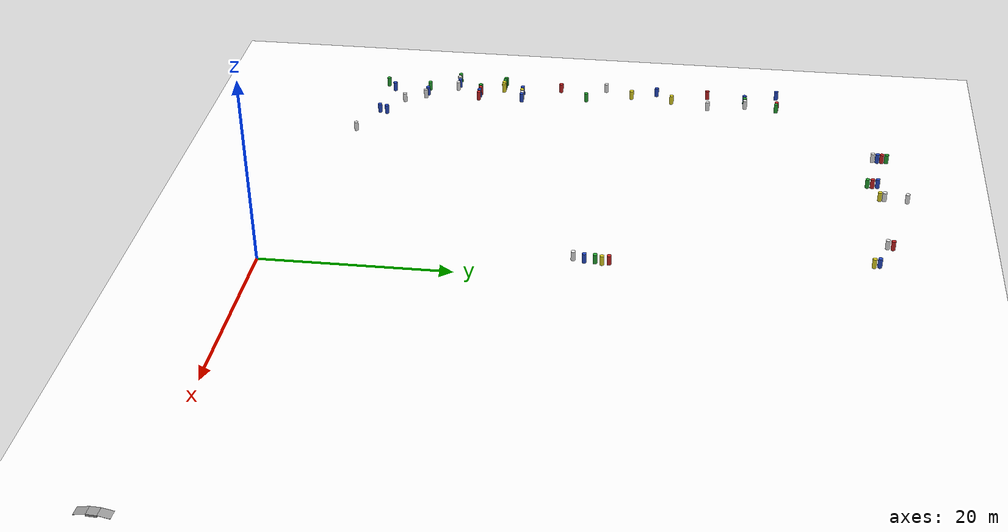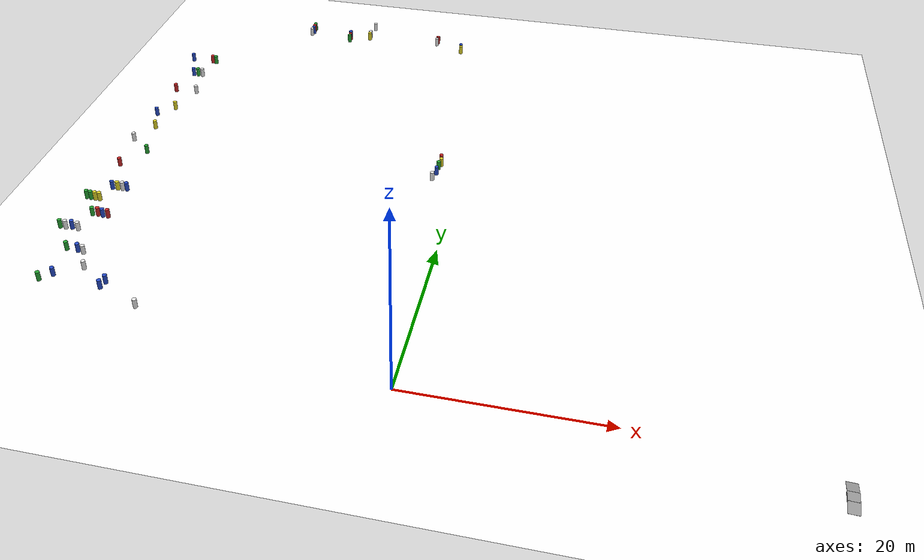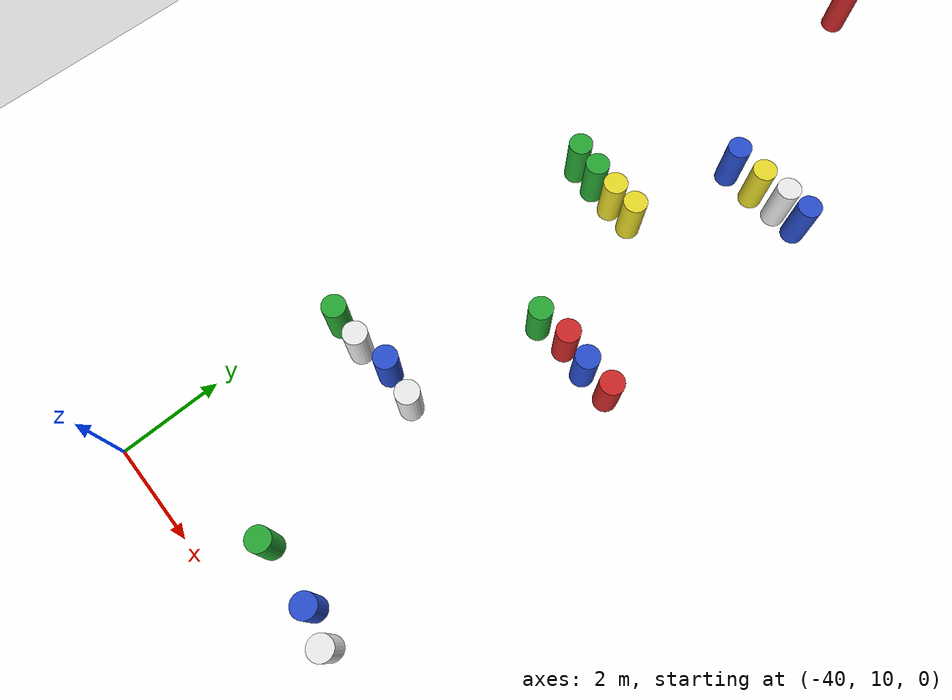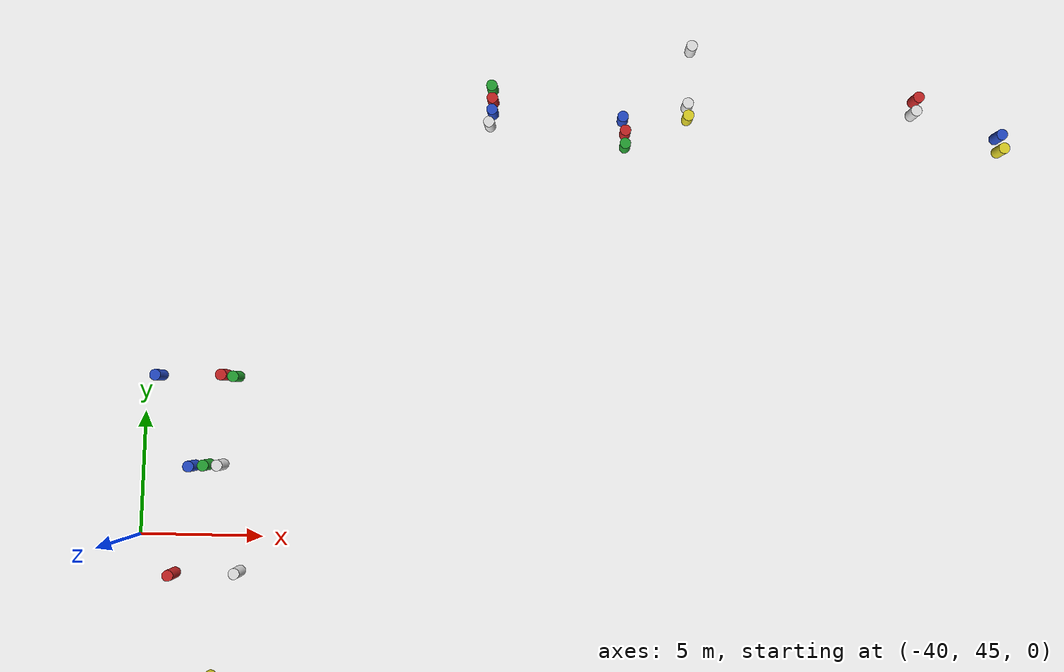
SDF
<sdf version="1.10">
 <world name="IGVC_AutoNav">
  <plugin name="gz::sim::systems::Physics" filename="gz-sim-physics-system"/>
  <plugin name="gz::sim::systems::UserCommands" filename="gz-sim-user-commands-system"/>
  <plugin name="gz::sim::systems::SceneBroadcaster" filename="gz-sim-scene-broadcaster-system"/>
  <plugin name="gz::sim::systems::Contact" filename="gz-sim-contact-system"/>
  <plugin name="gz::sim::systems::NavSat" filename="gz-sim-navsat-system"/>
  <spherical_coordinates>
   <surface_model>EARTH_WGS84</surface_model>
   <world_frame_orientation>ENU</world_frame_orientation>
   <latitude_deg>47.478949999999998</latitude_deg>
   <longitude_deg>19.057784999999999</longitude_deg>
   <elevation>0</elevation>
   <heading_deg>0</heading_deg>
  </spherical_coordinates>
  <plugin name="gz::sim::systems::Sensors" filename="gz-sim-sensors-system">
   <render_engine>ogre2</render_engine>
  </plugin>
  <plugin name="gz::sim::systems::Imu" filename="gz-sim-imu-system"/>
  <gravity>0 0 -9.8000000000000007</gravity>
  <magnetic_field>6.0000000000000002e-06 2.3e-05 -4.1999999999999998e-05</magnetic_field>
  <atmosphere type="adiabatic"/>
  <physics type="ode">
   <max_step_size>0.0050000000000000001</max_step_size>
   <real_time_factor>1</real_time_factor>
   <real_time_update_rate>200</real_time_update_rate>
  </physics>
  <scene>
   <ambient>0.400000006 0.400000006 0.400000006 1</ambient>
   <background>0.699999988 0.699999988 0.699999988 1</background>
   <shadows>true</shadows>
  </scene>
  <include><uri>model://autonav_ground_plane</uri><name>ground_plane</name></include>
  <include>
   <uri>model://ramp</uri>
   <name>ramp</name>
   <pose>22.289173126229461 -1.7593828439352679 0.12093662914603238 -0.00040758482251891984 1.8813558769869026e-05 -0.00027779097985906144</pose>
  </include>
  <include>
   <uri>model://barrel_green</uri>
   <name>barrel_green</name>
   <pose>7.9045200347900391 -0.6910560131072998 0.51783412973959364 5.4465320442575335e-17 1.4847199703921773e-16 1.1335182259741231e-17</pose>
  </include>
  <include>
   <uri>model://barrel_red</uri>
   <name>barrel_red</name>
   <pose>7.9519891705803625 0.71237891741602632 0.51783500226090018 -3.9895035379754155e-08 1.3163939249185187e-06 -3.5364144559898175e-10</pose>
  </include>
  <include>
   <uri>model://barrel_blue</uri>
   <name>barrel_blue</name>
   <pose>7.883906364440918 -1.7733099460601807 0.51783484711055439 5.6646733285059868e-17 -1.274651809434059e-17 3.2759096209912879e-18</pose>
  </include>
  <include>
   <uri>model://barrel_white</uri>
   <name>barrel_white</name>
   <pose>7.6080474853515625 -2.9339299201965332 0.51783401723409928 -1.0880296480481386e-16 -6.0992637707180622e-17 -1.1018668432930874e-17</pose>
  </include>
  <include>
   <uri>model://barrel_yellow</uri>
   <name>barrel_yellow</name>
   <pose>8.0864911843893648 5.8954190899095729e-08 0.51783499815625755 -3.9881195985147071e-10 8.7103696880660815e-07 -2.037228703888771e-08</pose>
  </include>
  <include>
   <uri>model://barrel_green</uri>
   <name>barrel_green_1_1</name>
   <pose>-15.488190812153249 28.98845227458223 0.51783484828566551 2.6413974714889565e-17 1.6931036770831109e-16 4.3765581081979616e-18</pose>
  </include>
  <include>
   <uri>model://barrel_red</uri>
   <name>barrel_red_1</name>
   <pose>-15.453693650233234 28.475813930075642 0.51783484828566551 3.4192321481962751e-17 -6.6721553197645418e-17 -9.242358905622676e-18</pose>
  </include>
  <include>
   <uri>model://barrel_blue</uri>
   <name>barrel_blue_1</name>
   <pose>-15.454241538800543 28.002397955323904 0.51783484828566551 8.4153565895768564e-17 1.6823267572497156e-18 -1.1071003553101453e-18</pose>
  </include>
  <include>
   <uri>model://barrel_white</uri>
   <name>barrel_white_1</name>
   <pose>-15.570004476142145 27.491930829973384 0.51783484828566551 -8.9882920964459109e-17 -1.1494581093160616e-16 -1.0142163574368175e-17</pose>
  </include>
  <include>
   <uri>model://barrel_green</uri>
   <name>barrel_green_2</name>
   <pose>-10.008976388729545 26.727866245258202 0.51783484828566551 5.0031068638151044e-17 1.8764124539171192e-16 -1.5190534901501726e-18</pose>
  </include>
  <include>
   <uri>model://barrel_red</uri>
   <name>barrel_red_2</name>
   <pose>-10.014990794950684 27.262920619148893 0.51783484828566551 -7.3727530299513395e-18 -1.3139233913193364e-16 -4.7712782277717012e-18</pose>
  </include>
  <include>
   <uri>model://barrel_blue</uri>
   <name>barrel_blue_2</name>
   <pose>-10.127975236161745 27.821636974121034 0.51783484828566551 8.142363533649928e-17 -2.676848542158592e-17 2.6029860731572573e-18</pose>
  </include>
  <include>
   <uri>model://barrel_white</uri>
   <name>barrel_white_2</name>
   <pose>-7.37641995222081 30.80256806565734 0.51783484828566551 -1.0882791985761164e-16 -4.4702081130767761e-18 -9.6641107963062212e-18</pose>
  </include>
  <include>
   <uri>model://barrel_yellow</uri>
   <name>barrel_yellow_1</name>
   <pose>-7.4669771570731376 27.931695500593694 0.51783484828566551 -2.8839565225299995e-17 -9.9271375607526221e-17 -5.0419286304493866e-18</pose>
  </include>
  <include>
   <uri>model://barrel_white</uri>
   <name>barrel_white_3</name>
   <pose>-7.4919378585986252 28.429467202487775 0.51783484828566551 -1.1863472879319026e-16 -6.5724550227156299e-17 -9.8911289060128324e-18</pose>
  </include>
  <include>
   <uri>model://barrel_red</uri>
   <name>barrel_red_3</name>
   <pose>1.8812475376618067 28.881296809577414 0.51783484828566551 -7.3677899399744839e-20 -8.0407445216781689e-17 -1.0066938199059185e-17</pose>
  </include>
  <include>
   <uri>model://barrel_white</uri>
   <name>barrel_white_4</name>
   <pose>1.789702633557372 28.324716629763884 0.51783484828566551 -1.328325375699971e-16 -8.1416517101511263e-17 -1.1764413924336685e-17</pose>
  </include>
  <include>
   <uri>model://barrel_yellow</uri>
   <name>barrel_yellow_2</name>
   <pose>5.3592741032332363 26.861703425308278 0.51783484828566551 8.4315334483502813e-18 -8.0667063018846105e-17 -7.7463089969692476e-18</pose>
  </include>
  <include>
   <uri>model://barrel_blue</uri>
   <name>barrel_blue_3</name>
   <pose>5.2657296668635674 27.416795858760544 0.51783484828566551 4.8867705697542638e-17 -2.5146612452443584e-18 2.7084613670198057e-18</pose>
  </include>
  <include>
   <uri>model://barrel_green</uri>
   <name>barrel_green_3</name>
   <pose>-25.556525668305117 16.940541040125776 0.51783484828566551 3.772194755566899e-17 1.1293878341134605e-16 2.7685612896972377e-18</pose>
  </include>
  <include>
   <uri>model://barrel_red</uri>
   <name>barrel_red_4</name>
   <pose>-26.04345920466524 17.000907147320287 0.51783484828566551 3.3458913210818703e-17 -3.9731026094263697e-17 -7.8879549044274355e-18</pose>
  </include>
  <include>
   <uri>model://barrel_blue</uri>
   <name>barrel_blue_4</name>
   <pose>-28.67925873807792 16.934691875648735 0.51783484828566551 8.0684160413954195e-17 -2.1424394027182248e-19 4.0088506845633501e-18</pose>
  </include>
  <include>
   <uri>model://barrel_white</uri>
   <name>barrel_white_5</name>
   <pose>-26.067814814563913 13.369549408150338 0.51783484828566551 -1.2782705024634471e-16 -7.4746497214979288e-17 -9.0084261575558762e-18</pose>
  </include>
  <include>
   <uri>model://barrel_green</uri>
   <name>barrel_green_4</name>
   <pose>-26.625692237642816 13.357648602477834 0.51783484828566551 5.7691938650509445e-17 7.6558506547920066e-17 1.4718234492409017e-18</pose>
  </include>
  <include>
   <uri>model://barrel_blue</uri>
   <name>barrel_blue_5</name>
   <pose>-27.20851498275951 13.30408536823926 0.51783484828566551 2.4531569160843424e-17 -1.4294515637503489e-17 -6.714172027910698e-19</pose>
  </include>
  <include>
   <uri>model://barrel_white</uri>
   <name>barrel_white_6</name>
   <pose>-25.224193547631685 9.1042400493614402 0.51783484828566551 -7.7766467135084704e-17 -8.469901718141504e-17 -1.0581058952210694e-17</pose>
  </include>
  <include>
   <uri>model://barrel_red</uri>
   <name>barrel_red_5</name>
   <pose>-27.855475827336114 8.9738529878827897 0.51783484828566551 5.3275513043597715e-17 -7.4363174120487227e-17 -7.4146954109797225e-18</pose>
  </include>
  <include>
   <uri>model://barrel_yellow</uri>
   <name>barrel_yellow_3</name>
   <pose>-26.254278002759925 4.9040162812890564 0.51783484828566551 1.6280774601454003e-17 -8.039673446585886e-17 -6.3108930923532993e-18</pose>
  </include>
  <include>
   <uri>model://barrel_blue</uri>
   <name>barrel_blue_6</name>
   <pose>-27.882420676622051 3.0897250588429195 0.51783484828566551 8.0414354658290282e-17 -1.814163817801844e-17 7.1043412813874378e-19</pose>
  </include>
  <include>
   <uri>model://barrel_yellow</uri>
   <name>barrel_yellow_4</name>
   <pose>-26.87131102976743 0.23700118711770202 0.51783484828566551 3.3853087318781557e-17 -3.4726550222486197e-18 -6.5935192506070422e-18</pose>
  </include>
  <include>
   <uri>model://barrel_white</uri>
   <name>barrel_white_7</name>
   <pose>-28.221606580919477 -2.8232942043228917 0.51783484828566551 -8.0297798726122618e-17 -3.0258274683428356e-17 -9.9843566439057361e-18</pose>
  </include>
  <include>
   <uri>model://barrel_green</uri>
   <name>barrel_green_5</name>
   <pose>-25.647826172053435 -4.9643647365991086 0.51783484828566551 8.6622064681696006e-17 1.4940789662818441e-16 3.9325478953923625e-18</pose>
  </include>
  <include>
   <uri>model://barrel_red</uri>
   <name>barrel_red_6</name>
   <pose>-27.56315194540203 -8.0715611466327886 0.51783484828566551 -1.1859328054006835e-17 -1.326962380440271e-16 -7.6294863200789303e-18</pose>
  </include>
  <include>
   <uri>model://barrel_blue</uri>
   <name>barrel_blue_8_1</name>
   <pose>-25.172713769974248 -17.413864249884529 0.51783484828566551 8.0474891953050402e-17 -2.6763468477948196e-17 1.1733794409209652e-18</pose>
  </include>
  <include>
   <uri>model://barrel_red</uri>
   <name>barrel_red_6_1</name>
   <pose>-24.571154852252711 -17.405801527208045 0.51783484828566551 -1.968006045172916e-17 -1.1090358328917572e-16 -7.0181249282642739e-18</pose>
  </include>
  <include>
   <uri>model://barrel_red</uri>
   <name>barrel_red_6_1_1</name>
   <pose>-25.732425505239149 -17.346344393532547 0.5178341887594714 -3.6343005684833846e-17 -8.8432740560082973e-17 -7.9205803277673888e-18</pose>
  </include>
  <include>
   <uri>model://barrel_green</uri>
   <name>barrel_green_6_1</name>
   <pose>-28.678495720373331 -20.160042973346741 0.51783401723409739 5.4535115625600877e-17 1.4830777115285774e-16 1.1360234715536376e-17</pose>
  </include>
  <include>
   <uri>model://barrel_white</uri>
   <name>barrel_white_8_1</name>
   <pose>-28.048248473432256 -20.178473913610141 0.51783401723409739 -1.0877418664355473e-16 -6.0999144363471906e-17 -1.1029129765921806e-17</pose>
  </include>
  <include>
   <uri>model://barrel_blue</uri>
   <name>barrel_blue_9_1</name>
   <pose>-27.367939370193024 -20.043155904352503 0.51783484828566551 5.3357552092124544e-17 2.6774367614380947e-17 1.048527673547855e-18</pose>
  </include>
  <include>
   <uri>model://barrel_white</uri>
   <name>barrel_white_8_2</name>
   <pose>-26.646565180749235 -20.139862415168395 0.51783401723409739 -1.088296711086501e-16 -6.0961024365455408e-17 -1.1035027337856759e-17</pose>
  </include>
  <include>
   <uri>model://barrel_green</uri>
   <name>barrel_green_6_2</name>
   <pose>-26.348015083102208 -17.43436936375965 0.51783401723409739 5.4399204825411291e-17 1.4831997394180536e-16 1.137718516544725e-17</pose>
  </include>
  <include>
   <uri>model://barrel_blue</uri>
   <name>barrel_blue_8_2</name>
   <pose>-24.710234136220055 -12.398350802537937 0.51783500180521858 8.7258415564281948e-07 -4.7395525895452984e-08 -9.7468388716746216e-06</pose>
  </include>
  <include>
   <uri>model://barrel_white</uri>
   <name>barrel_white_8_3</name>
   <pose>-25.206345455748391 -12.412243441990343 0.51783499772072439 1.2580671568312728e-06 -4.7696693970045557e-07 4.430946596557043e-06</pose>
  </include>
  <include>
   <uri>model://barrel_yellow</uri>
   <name>barrel_yellow_5_1</name>
   <pose>-25.7628436025966 -12.465779228440102 0.51783484828566551 3.1488844815732209e-18 -8.0317998370153682e-17 -4.4219381320681879e-18</pose>
  </include>
  <include>
   <uri>model://barrel_blue</uri>
   <name>barrel_blue_9_2</name>
   <pose>-26.338357053094771 -12.455109416821767 0.51783499711837067 1.0849907130020952e-06 -5.9936445848934074e-07 0.0015838669140157682</pose>
  </include>
  <include>
   <uri>model://barrel_yellow</uri>
   <name>barrel_yellow_7_1</name>
   <pose>-26.807578419136259 -14.749523396736341 0.51783497731578099 -1.1533464481578546e-07 4.6670335986238132e-08 3.4816469922040137e-05</pose>
  </include>
  <include>
   <uri>model://barrel_yellow</uri>
   <name>barrel_yellow_6_1</name>
   <pose>-27.323584515878245 -14.758469320244931 0.5178349980093695 -8.4605136545642831e-10 -1.6462252534082576e-06 -2.0372329169450861e-08</pose>
  </include>
  <include>
   <uri>model://barrel_green</uri>
   <name>barrel_green_6_3</name>
   <pose>-27.833686127578606 -14.736666057250174 0.51783401723409739 5.4473272642387283e-17 1.4827039545886976e-16 1.1392751528932446e-17</pose>
  </include>
  <include>
   <uri>model://barrel_green</uri>
   <name>barrel_green_1_2</name>
   <pose>-28.349938711809695 -14.687270374445982 0.51783401723409739 5.4600772490590885e-17 1.4841623333514504e-16 1.1338876961812164e-17</pose>
  </include>
  <include>
   <uri>model://barrel_white</uri>
   <name>barrel_white_8_2_1</name>
   <pose>-24.336643015900545 -23.610911708999218 0.51783401723409739 -1.0887177324602871e-16 -6.0890364277193165e-17 -1.1052459535807752e-17</pose>
  </include>
  <include>
   <uri>model://barrel_blue</uri>
   <name>barrel_blue_9_1_1</name>
   <pose>-24.992890094998376 -23.447790075307857 0.51783484828566551 2.6564415110260051e-17 3.1063236900858277e-17 1.4296147616410536e-19</pose>
  </include>
  <include>
   <uri>model://barrel_green</uri>
   <name>barrel_green_6_1_1</name>
   <pose>-26.261464398402921 -23.4132375042931 0.51783401723409739 5.4622854833097855e-17 1.4825155746816235e-16 1.1382422008110492e-17</pose>
  </include>
  <include>
   <uri>model://barrel_green</uri>
   <name>barrel_green_6_1_1_1</name>
   <pose>-26.715660807046095 -28.415389144022193 0.51783401723409739 5.4734050442383435e-17 1.483268083834983e-16 1.1366670242312382e-17</pose>
  </include>
  <include>
   <uri>model://barrel_blue</uri>
   <name>barrel_blue_9_1_1_1</name>
   <pose>-25.661035399885023 -27.47566773496451 0.51783484828566551 2.5047773947010694e-17 9.4919749369266555e-18 1.6877272847253129e-18</pose>
  </include>
  <include>
   <uri>model://barrel_white</uri>
   <name>barrel_white_8_2_1_1</name>
   <pose>-23.130709088624357 -25.856733695310449 0.51783401723409739 -1.0879385945305962e-16 -6.1044488558680925e-17 -1.1068904379103042e-17</pose>
  </include>
  <include>
   <uri>model://barrel_blue</uri>
   <name>barrel_blue_9_1_1_2</name>
   <pose>-20.060186472243011 -27.381980340891943 0.51783484828566551 2.4907906417061612e-17 -2.6781502394670489e-17 -3.1295905423040165e-19</pose>
  </include>
  <include>
   <uri>model://barrel_blue</uri>
   <name>barrel_blue_9_1_1_1_1</name>
   <pose>-20.264619864469129 -28.212313753161961 0.51783484828566551 8.0344278840222264e-17 6.8016246674152642e-18 3.1714589188684681e-19</pose>
  </include>
  <include>
   <uri>model://barrel_white</uri>
   <name>barrel_white_8_2_1_1_1</name>
   <pose>-15.736231253180632 -30.025935076995605 0.51783401723409739 -1.0879359120852976e-16 -6.1034056933857922e-17 -1.1061023670335335e-17</pose>
  </include>
  <light name="sun" type="directional">
   <pose>0 0 10 0 0 0</pose>
   <intensity>1</intensity>
   <direction>-0.5 0.10000000000000001 -0.90000000000000002</direction>
   <diffuse>0.800000012 0.800000012 0.800000012 1</diffuse>
   <specular>0.200000003 0.200000003 0.200000003 1</specular>
   <attenuation>
    <range>1000</range>
    <linear>0.01</linear>
    <constant>0.90000000000000002</constant>
    <quadratic>0.001</quadratic>
   </attenuation>
   <spot><inner_angle>0</inner_angle><outer_angle>0</outer_angle><falloff>0</falloff></spot>
  </light>
  <light name="ambient" type="point">
   <pose>0 0 10 0 0 0</pose>
   <cast_shadows>false</cast_shadows>
   <intensity>1</intensity>
   <direction>0 0 -1</direction>
   <diffuse>0.5 0.5 0.5 1</diffuse>
   <specular>0.300000012 0.300000012 0.300000012 1</specular>
   <attenuation>
    <range>20</range>
    <linear>0.01</linear>
    <constant>0.80000000000000004</constant>
    <quadratic>0.001</quadratic>
   </attenuation>
   <spot><inner_angle>0</inner_angle><outer_angle>0</outer_angle><falloff>0</falloff></spot>
  </light>
 </world>
</sdf>

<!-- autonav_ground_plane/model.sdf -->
<sdf version="1.10">
  <model name="autonav_ground_plane">
    <static>true</static>
    <link name="link">
      <!-- keep local pose on the link -->
      <pose>0 0 0 0 0 0</pose>

      <!-- inertial -->
      <inertial>
        <pose>0 0 0 0 0 0</pose>
        <mass>1</mass>
        <inertia>
          <ixx>1</ixx>
          <ixy>0</ixy>
          <ixz>0</ixz>
          <iyy>1</iyy>
          <iyz>0</iyz>
          <izz>1</izz>
        </inertia>
      </inertial>

      <!-- collision -->
      <collision name="collision">
        <geometry>
          <plane>
            <normal>0 0 1</normal>
            <size>64.748999999999995 67.341999999999999</size>
          </plane>
        </geometry>
        <max_contacts>10</max_contacts>
        <surface>
          <friction>
            <ode>
              <mu>100</mu>
              <mu2>50</mu2>
            </ode>
            <torsional>
              <ode />
            </torsional>
          </friction>
          <contact>
            <ode />
          </contact>
          <bounce />
        </surface>
      </collision>

      <!-- visual -->
      <visual name="visual">
        <cast_shadows>false</cast_shadows>
        <geometry>
          <plane>
            <normal>0 0 1</normal>
            <size>64.748999999999995 67.341999999999999</size>
          </plane>
        </geometry>
        <material>
          <diffuse>1 1 1 1</diffuse>
          <specular>1 1 1 1</specular>
          <pbr>
            <metal>
              <albedo_map>file://media/materials/textures/asphalt_autonav.png</albedo_map>
            </metal>
          </pbr>
        </material>
      </visual>

      <self_collide>false</self_collide>
      <enable_wind>false</enable_wind>
      <kinematic>false</kinematic>
    </link>
  </model>
</sdf>

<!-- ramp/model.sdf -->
<sdf version="1.7">
  <model name="ramp">
    <pose>0 0 0 0 0 0</pose>

<link name='link_0'>
        <inertial>
          <mass>100</mass>
          <inertia>
            <ixx>8.69346</ixx>
            <ixy>0</ixy>
            <ixz>0</ixz>
            <iyy>8.69346</iyy>
            <iyz>0</iyz>
            <izz>16.666699999999999</izz>
          </inertia>
          <pose>0 0 0 0 0 0</pose>
        </inertial>
        <pose>0.022429999999999999 -0.0047190000000000001 0.0083920000000000002 0 0 -0.048312000000000001</pose>
        <self_collide>false</self_collide>
        <enable_wind>false</enable_wind>
        <kinematic>false</kinematic>
        <gravity>true</gravity>
        <visual name='visual'>
          <pose>0 0 0 0 0 0</pose>
          <geometry>
            <box>
              <size>1 1 0.20788300000000001</size>
            </box>
          </geometry>
          <material>
            <lighting>true</lighting>
            <script>
              <uri>file://media/materials/scripts/gazebo.material</uri>
              <name>Gazebo/Grey</name>
            </script>
            <shader type='pixel'>
              <normal_map>__default__</normal_map>
            </shader>
            <emissive>0 0 0 1</emissive>
            <ambient>0.300000012 0.300000012 0.300000012 1</ambient>
            <diffuse>0.699999988 0.699999988 0.699999988 1</diffuse>
            <specular>0.00999999978 0.00999999978 0.00999999978 1</specular>
          </material>
          <transparency>0</transparency>
          <cast_shadows>true</cast_shadows>
        </visual>
        <collision name='collision'>
          <laser_retro>0</laser_retro>
          <max_contacts>10</max_contacts>
          <pose>0 0 0 0 0 0</pose>
          <geometry>
            <box>
              <size>1 1 0.20788300000000001</size>
            </box>
          </geometry>
          <surface>
            <friction>
              <ode>
                <mu>1</mu>
                <mu2>1</mu2>
                <fdir1>0 0 0</fdir1>
                <slip1>0</slip1>
                <slip2>0</slip2>
              </ode>
              <torsional>
                <coefficient>1</coefficient>
                <patch_radius>0</patch_radius>
                <surface_radius>0</surface_radius>
                <use_patch_radius>true</use_patch_radius>
                <ode>
                  <slip>0</slip>
                </ode>
              </torsional>
            </friction>
            <bounce>
              <restitution_coefficient>0</restitution_coefficient>
              <threshold>1000000</threshold>
            </bounce>
            <contact>
              <collide_without_contact>false</collide_without_contact>
              <collide_without_contact_bitmask>1</collide_without_contact_bitmask>
              <collide_bitmask>1</collide_bitmask>
              <ode>
                <soft_cfm>0</soft_cfm>
                <soft_erp>0.20000000000000001</soft_erp>
                <kp>10000000000000</kp>
                <kd>1</kd>
                <max_vel>0.01</max_vel>
                <min_depth>0</min_depth>
              </ode>
              <bullet>
                <split_impulse>true</split_impulse>
                <split_impulse_penetration_threshold>-0.01</split_impulse_penetration_threshold>
                <soft_cfm>0</soft_cfm>
                <soft_erp>0.20000000000000001</soft_erp>
                <kp>10000000000000</kp>
                <kd>1</kd>
              </bullet>
            </contact>
          </surface>
        </collision>
      </link>
      <link name='link_1'>
        <inertial>
          <mass>50</mass>
          <inertia>
            <ixx>5.7244999999999999</ixx>
            <ixy>0</ixy>
            <ixz>0</ixz>
            <iyy>4.1671199999999997</iyy>
            <iyz>0</iyz>
            <izz>9.8907100000000003</izz>
          </inertia>
          <pose>0 0 0 0 0 0</pose>
        </inertial>
        <pose>-0.028115999999993591 -1.0520499999999986 -0.0041969999999999508 0.19279199999999999 -8.6736173798840355e-19 -0.046122999999999935</pose>
        <self_collide>false</self_collide>
        <enable_wind>false</enable_wind>
        <kinematic>false</kinematic>
        <gravity>true</gravity>
        <visual name='visual'>
          <pose>0 0 0 0 0 0</pose>
          <geometry>
            <box>
              <size>1 1.17208 0.010432</size>
            </box>
          </geometry>
          <material>
            <lighting>true</lighting>
            <script>
              <uri>file://media/materials/scripts/gazebo.material</uri>
              <name>Gazebo/Grey</name>
            </script>
            <shader type='pixel'>
              <normal_map>__default__</normal_map>
            </shader>
            <emissive>0 0 0 1</emissive>
          </material>
          <transparency>0</transparency>
          <cast_shadows>true</cast_shadows>
        </visual>
        <collision name='collision'>
          <laser_retro>0</laser_retro>
          <max_contacts>10</max_contacts>
          <pose>0 0 0 0 0 0</pose>
          <geometry>
            <box>
              <size>1 1.17208 0.010432</size>
            </box>
          </geometry>
          <surface>
            <friction>
              <ode>
                <mu>1</mu>
                <mu2>1</mu2>
                <fdir1>0 0 0</fdir1>
                <slip1>0</slip1>
                <slip2>0</slip2>
              </ode>
              <torsional>
                <coefficient>1</coefficient>
                <patch_radius>0</patch_radius>
                <surface_radius>0</surface_radius>
                <use_patch_radius>true</use_patch_radius>
                <ode>
                  <slip>0</slip>
                </ode>
              </torsional>
            </friction>
            <bounce>
              <restitution_coefficient>0</restitution_coefficient>
              <threshold>1000000</threshold>
            </bounce>
            <contact>
              <collide_without_contact>false</collide_without_contact>
              <collide_without_contact_bitmask>1</collide_without_contact_bitmask>
              <collide_bitmask>1</collide_bitmask>
              <ode>
                <soft_cfm>0</soft_cfm>
                <soft_erp>0.20000000000000001</soft_erp>
                <kp>10000000000000</kp>
                <kd>1</kd>
                <max_vel>0.01</max_vel>
                <min_depth>0</min_depth>
              </ode>
              <bullet>
                <split_impulse>true</split_impulse>
                <split_impulse_penetration_threshold>-0.01</split_impulse_penetration_threshold>
                <soft_cfm>0</soft_cfm>
                <soft_erp>0.20000000000000001</soft_erp>
                <kp>10000000000000</kp>
                <kd>1</kd>
              </bullet>
            </contact>
          </surface>
        </collision>
      </link>
      <link name='link_1_clone'>
        <inertial>
          <mass>50</mass>
          <inertia>
            <ixx>5.7244999999999999</ixx>
            <ixy>0</ixy>
            <ixz>0</ixz>
            <iyy>4.1671199999999997</iyy>
            <iyz>0</iyz>
            <izz>9.8907100000000003</izz>
          </inertia>
          <pose>0 0 0 0 0 0</pose>
        </inertial>
        <pose>0.064606000000004826 1.0540499999999988 -0.0041959999999999636 -0.19048000000000007 2.6020852139652106e-18 -0.046122999999999879</pose>
        <self_collide>false</self_collide>
        <enable_wind>false</enable_wind>
        <kinematic>false</kinematic>
        <gravity>true</gravity>
        <visual name='visual'>
          <pose>0 0 0 0 0 0</pose>
          <geometry>
            <box>
              <size>1 1.17208 0.010432</size>
            </box>
          </geometry>
          <material>
            <lighting>true</lighting>
            <script>
              <uri>file://media/materials/scripts/gazebo.material</uri>
              <name>Gazebo/Grey</name>
            </script>
            <shader type='pixel'>
              <normal_map>__default__</normal_map>
            </shader>
            <emissive>0 0 0 1</emissive>
          </material>
          <transparency>0</transparency>
          <cast_shadows>true</cast_shadows>
        </visual>
        <collision name='collision'>
          <laser_retro>0</laser_retro>
          <max_contacts>10</max_contacts>
          <pose>0 0 0 0 0 0</pose>
          <geometry>
            <box>
              <size>1 1.17208 0.010432</size>
            </box>
          </geometry>
          <surface>
            <friction>
              <ode>
                <mu>1</mu>
                <mu2>1</mu2>
                <fdir1>0 0 0</fdir1>
                <slip1>0</slip1>
                <slip2>0</slip2>
              </ode>
              <torsional>
                <coefficient>1</coefficient>
                <patch_radius>0</patch_radius>
                <surface_radius>0</surface_radius>
                <use_patch_radius>true</use_patch_radius>
                <ode>
                  <slip>0</slip>
                </ode>
              </torsional>
            </friction>
            <bounce>
              <restitution_coefficient>0</restitution_coefficient>
              <threshold>1000000</threshold>
            </bounce>
            <contact>
              <collide_without_contact>false</collide_without_contact>
              <collide_without_contact_bitmask>1</collide_without_contact_bitmask>
              <collide_bitmask>1</collide_bitmask>
              <ode>
                <soft_cfm>0</soft_cfm>
                <soft_erp>0.20000000000000001</soft_erp>
                <kp>10000000000000</kp>
                <kd>1</kd>
                <max_vel>0.01</max_vel>
                <min_depth>0</min_depth>
              </ode>
              <bullet>
                <split_impulse>true</split_impulse>
                <split_impulse_penetration_threshold>-0.01</split_impulse_penetration_threshold>
                <soft_cfm>0</soft_cfm>
                <soft_erp>0.20000000000000001</soft_erp>
                <kp>10000000000000</kp>
                <kd>1</kd>
              </bullet>
            </contact>
          </surface>
        </collision>
      </link>
      <joint name='link_0_JOINT_1' type='fixed'>
        <parent>link_0</parent>
        <child>link_1</child>
        <pose>2.4286128663675299e-17 4.4408920985006262e-16 5.5511151231257827e-17 -4.0657581468206416e-20 2.6020852139652106e-18 -5.2897245787002938e-38</pose>
        <physics>
          <ode>
            <limit>
              <cfm>0</cfm>
              <erp>0.20000000000000001</erp>
            </limit>
            <suspension>
              <cfm>0</cfm>
              <erp>0.20000000000000001</erp>
            </suspension>
          </ode>
        </physics>
      </joint>
      <joint name='link_0_JOINT_2' type='fixed'>
        <parent>link_0</parent>
        <child>link_1_clone</child>
        <pose>-1.3877787807814457e-17 -6.6613381477509392e-16 0 0 -8.6736173798840355e-19 0</pose>
        <physics>
          <ode>
            <limit>
              <cfm>0</cfm>
              <erp>0.20000000000000001</erp>
            </limit>
            <suspension>
              <cfm>0</cfm>
              <erp>0.20000000000000001</erp>
            </suspension>
          </ode>
        </physics>
      </joint>
      <static>false</static>
      <allow_auto_disable>true</allow_auto_disable>
      <pose>16.036802274808394 -1.5646306269891335 0.12093784596940542 -0.00040752714961329195 1.8809761746657975e-05 -4.5353765025061412e-09</pose>
      <self_collide>false</self_collide>
  </model>
</sdf>

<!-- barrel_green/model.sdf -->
<sdf version="1.7">
  <model name="barrel_green">
    <pose>0 0 0 0 0 0</pose>
     <link name='link'>
        <inertial>
          <mass>1</mass>
          <inertia>
            <ixx>0.14583299999999999</ixx>
            <ixy>0</ixy>
            <ixz>0</ixz>
            <iyy>0.14583299999999999</iyy>
            <iyz>0</iyz>
            <izz>0.125</izz>
          </inertia>
          <pose>0 0 0 0 0 0</pose>
        </inertial>
        <self_collide>false</self_collide>
        <enable_wind>false</enable_wind>
        <kinematic>false</kinematic>
        <pose>0 0 0 0 0 0</pose>
        <visual name='visual'>
          <geometry>
            <cylinder>
              <radius>0.222916</radius>
              <length>1.0356700000000001</length>
            </cylinder>
          </geometry>
          <material>
            <script>
              <name>Gazebo/Green</name>
              <uri>file://media/materials/scripts/gazebo.material</uri>
            </script>
            <shader type='pixel'/>
          </material>
          <pose>0 0 0 0 0 0</pose>
          <transparency>0</transparency>
          <cast_shadows>true</cast_shadows>
        </visual>
        <collision name='collision'>
          <laser_retro>0</laser_retro>
          <max_contacts>10</max_contacts>
          <pose>0 0 0 0 0 0</pose>
          <geometry>
            <cylinder>
              <radius>0.222916</radius>
              <length>1.0356700000000001</length>
            </cylinder>
          </geometry>
          <surface>
            <friction>
              <ode>
                <mu>1</mu>
                <mu2>1</mu2>
                <fdir1>0 0 0</fdir1>
                <slip1>0</slip1>
                <slip2>0</slip2>
              </ode>
              <torsional>
                <coefficient>1</coefficient>
                <patch_radius>0</patch_radius>
                <surface_radius>0</surface_radius>
                <use_patch_radius>true</use_patch_radius>
                <ode>
                  <slip>0</slip>
                </ode>
              </torsional>
            </friction>
            <bounce>
              <restitution_coefficient>0</restitution_coefficient>
              <threshold>1000000</threshold>
            </bounce>
            <contact>
              <collide_without_contact>false</collide_without_contact>
              <collide_without_contact_bitmask>1</collide_without_contact_bitmask>
              <collide_bitmask>1</collide_bitmask>
              <ode>
                <soft_cfm>0</soft_cfm>
                <soft_erp>0.20000000000000001</soft_erp>
                <kp>10000000000000</kp>
                <kd>1</kd>
                <max_vel>0.01</max_vel>
                <min_depth>0</min_depth>
              </ode>
              <bullet>
                <split_impulse>true</split_impulse>
                <split_impulse_penetration_threshold>-0.01</split_impulse_penetration_threshold>
                <soft_cfm>0</soft_cfm>
                <soft_erp>0.20000000000000001</soft_erp>
                <kp>10000000000000</kp>
                <kd>1</kd>
              </bullet>
            </contact>
          </surface>
        </collision>
      </link>
      <static>false</static>
      <allow_auto_disable>true</allow_auto_disable>
      <pose>-10.530400276184082 34.562625885009766 0.48958452317623902 -1.4886732127141289e-06 -6.1759990028397762e-07 2.569076395842905e-12</pose>
      <self_collide>false</self_collide>
  </model>
</sdf>

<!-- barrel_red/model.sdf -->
<sdf version="1.7">
  <model name="barrel_red">
    <pose>0 0 0 0 0 0</pose>
     <link name='link'>
        <inertial>
          <mass>1</mass>
          <inertia>
            <ixx>0.14583299999999999</ixx>
            <ixy>0</ixy>
            <ixz>0</ixz>
            <iyy>0.14583299999999999</iyy>
            <iyz>0</iyz>
            <izz>0.125</izz>
          </inertia>
          <pose>0 0 0 0 0 0</pose>
        </inertial>
        <self_collide>false</self_collide>
        <enable_wind>false</enable_wind>
        <kinematic>false</kinematic>
        <pose>0 0 0 0 0 0</pose>
        <visual name='visual'>
          <geometry>
            <cylinder>
              <radius>0.222916</radius>
              <length>1.0356700000000001</length>
            </cylinder>
          </geometry>
          <material>
            <script>
              <name>Gazebo/Red</name>
              <uri>file://media/materials/scripts/gazebo.material</uri>
            </script>
            <shader type='pixel'/>
          </material>
          <pose>0 0 0 0 0 0</pose>
          <transparency>0</transparency>
          <cast_shadows>true</cast_shadows>
        </visual>
        <collision name='collision'>
          <laser_retro>0</laser_retro>
          <max_contacts>10</max_contacts>
          <pose>0 0 0 0 0 0</pose>
          <geometry>
            <cylinder>
              <radius>0.222916</radius>
              <length>1.0356700000000001</length>
            </cylinder>
          </geometry>
          <surface>
            <friction>
              <ode>
                <mu>1</mu>
                <mu2>1</mu2>
                <fdir1>0 0 0</fdir1>
                <slip1>0</slip1>
                <slip2>0</slip2>
              </ode>
              <torsional>
                <coefficient>1</coefficient>
                <patch_radius>0</patch_radius>
                <surface_radius>0</surface_radius>
                <use_patch_radius>true</use_patch_radius>
                <ode>
                  <slip>0</slip>
                </ode>
              </torsional>
            </friction>
            <bounce>
              <restitution_coefficient>0</restitution_coefficient>
              <threshold>1000000</threshold>
            </bounce>
            <contact>
              <collide_without_contact>false</collide_without_contact>
              <collide_without_contact_bitmask>1</collide_without_contact_bitmask>
              <collide_bitmask>1</collide_bitmask>
              <ode>
                <soft_cfm>0</soft_cfm>
                <soft_erp>0.20000000000000001</soft_erp>
                <kp>10000000000000</kp>
                <kd>1</kd>
                <max_vel>0.01</max_vel>
                <min_depth>0</min_depth>
              </ode>
              <bullet>
                <split_impulse>true</split_impulse>
                <split_impulse_penetration_threshold>-0.01</split_impulse_penetration_threshold>
                <soft_cfm>0</soft_cfm>
                <soft_erp>0.20000000000000001</soft_erp>
                <kp>10000000000000</kp>
                <kd>1</kd>
              </bullet>
            </contact>
          </surface>
        </collision>
      </link>
      <static>false</static>
      <allow_auto_disable>true</allow_auto_disable>
      <pose>-10.530400276184082 34.562625885009766 0.48958452317623902 -1.4886732127141289e-06 -6.1759990028397762e-07 2.569076395842905e-12</pose>
      <self_collide>false</self_collide>
  </model>
</sdf>

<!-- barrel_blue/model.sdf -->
<sdf version="1.7">
  <model name="barrel_blue">
    <pose>0 0 0 0 0 0</pose>
     <link name='link'>
        <inertial>
          <mass>1</mass>
          <inertia>
            <ixx>0.14583299999999999</ixx>
            <ixy>0</ixy>
            <ixz>0</ixz>
            <iyy>0.14583299999999999</iyy>
            <iyz>0</iyz>
            <izz>0.125</izz>
          </inertia>
          <pose>0 0 0 0 0 0</pose>
        </inertial>
        <self_collide>false</self_collide>
        <enable_wind>false</enable_wind>
        <kinematic>false</kinematic>
        <pose>0 0 0 0 0 0</pose>
        <visual name='visual'>
          <geometry>
            <cylinder>
              <radius>0.222916</radius>
              <length>1.0356700000000001</length>
            </cylinder>
          </geometry>
          <material>
            <script>
              <name>Gazebo/Blue</name>
              <uri>file://media/materials/scripts/gazebo.material</uri>
            </script>
            <shader type='pixel'/>
          </material>
          <pose>0 0 0 0 0 0</pose>
          <transparency>0</transparency>
          <cast_shadows>true</cast_shadows>
        </visual>
        <collision name='collision'>
          <laser_retro>0</laser_retro>
          <max_contacts>10</max_contacts>
          <pose>0 0 0 0 0 0</pose>
          <geometry>
            <cylinder>
              <radius>0.222916</radius>
              <length>1.0356700000000001</length>
            </cylinder>
          </geometry>
          <surface>
            <friction>
              <ode>
                <mu>1</mu>
                <mu2>1</mu2>
                <fdir1>0 0 0</fdir1>
                <slip1>0</slip1>
                <slip2>0</slip2>
              </ode>
              <torsional>
                <coefficient>1</coefficient>
                <patch_radius>0</patch_radius>
                <surface_radius>0</surface_radius>
                <use_patch_radius>true</use_patch_radius>
                <ode>
                  <slip>0</slip>
                </ode>
              </torsional>
            </friction>
            <bounce>
              <restitution_coefficient>0</restitution_coefficient>
              <threshold>1000000</threshold>
            </bounce>
            <contact>
              <collide_without_contact>false</collide_without_contact>
              <collide_without_contact_bitmask>1</collide_without_contact_bitmask>
              <collide_bitmask>1</collide_bitmask>
              <ode>
                <soft_cfm>0</soft_cfm>
                <soft_erp>0.20000000000000001</soft_erp>
                <kp>10000000000000</kp>
                <kd>1</kd>
                <max_vel>0.01</max_vel>
                <min_depth>0</min_depth>
              </ode>
              <bullet>
                <split_impulse>true</split_impulse>
                <split_impulse_penetration_threshold>-0.01</split_impulse_penetration_threshold>
                <soft_cfm>0</soft_cfm>
                <soft_erp>0.20000000000000001</soft_erp>
                <kp>10000000000000</kp>
                <kd>1</kd>
              </bullet>
            </contact>
          </surface>
        </collision>
      </link>
      <static>false</static>
      <allow_auto_disable>true</allow_auto_disable>
      <pose>-10.530400276184082 34.562625885009766 0.48958452317623902 -1.4886732127141289e-06 -6.1759990028397762e-07 2.569076395842905e-12</pose>
      <self_collide>false</self_collide>
  </model>
</sdf>

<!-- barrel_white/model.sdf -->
<sdf version="1.7">
  <model name="barrel_white">
    <pose>0 0 0 0 0 0</pose>
     <link name='link'>
        <inertial>
          <mass>1</mass>
          <inertia>
            <ixx>0.14583299999999999</ixx>
            <ixy>0</ixy>
            <ixz>0</ixz>
            <iyy>0.14583299999999999</iyy>
            <iyz>0</iyz>
            <izz>0.125</izz>
          </inertia>
          <pose>0 0 0 0 0 0</pose>
        </inertial>
        <self_collide>false</self_collide>
        <enable_wind>false</enable_wind>
        <kinematic>false</kinematic>
        <pose>0 0 0 0 0 0</pose>
        <visual name='visual'>
          <geometry>
            <cylinder>
              <radius>0.222916</radius>
              <length>1.0356700000000001</length>
            </cylinder>
          </geometry>
          <material>
            <script>
              <name>Gazebo/White</name>
              <uri>file://media/materials/scripts/gazebo.material</uri>
            </script>
            <shader type='pixel'/>
          </material>
          <pose>0 0 0 0 0 0</pose>
          <transparency>0</transparency>
          <cast_shadows>true</cast_shadows>
        </visual>
        <collision name='collision'>
          <laser_retro>0</laser_retro>
          <max_contacts>10</max_contacts>
          <pose>0 0 0 0 0 0</pose>
          <geometry>
            <cylinder>
              <radius>0.222916</radius>
              <length>1.0356700000000001</length>
            </cylinder>
          </geometry>
          <surface>
            <friction>
              <ode>
                <mu>1</mu>
                <mu2>1</mu2>
                <fdir1>0 0 0</fdir1>
                <slip1>0</slip1>
                <slip2>0</slip2>
              </ode>
              <torsional>
                <coefficient>1</coefficient>
                <patch_radius>0</patch_radius>
                <surface_radius>0</surface_radius>
                <use_patch_radius>true</use_patch_radius>
                <ode>
                  <slip>0</slip>
                </ode>
              </torsional>
            </friction>
            <bounce>
              <restitution_coefficient>0</restitution_coefficient>
              <threshold>1000000</threshold>
            </bounce>
            <contact>
              <collide_without_contact>false</collide_without_contact>
              <collide_without_contact_bitmask>1</collide_without_contact_bitmask>
              <collide_bitmask>1</collide_bitmask>
              <ode>
                <soft_cfm>0</soft_cfm>
                <soft_erp>0.20000000000000001</soft_erp>
                <kp>10000000000000</kp>
                <kd>1</kd>
                <max_vel>0.01</max_vel>
                <min_depth>0</min_depth>
              </ode>
              <bullet>
                <split_impulse>true</split_impulse>
                <split_impulse_penetration_threshold>-0.01</split_impulse_penetration_threshold>
                <soft_cfm>0</soft_cfm>
                <soft_erp>0.20000000000000001</soft_erp>
                <kp>10000000000000</kp>
                <kd>1</kd>
              </bullet>
            </contact>
          </surface>
        </collision>
      </link>
      <static>false</static>
      <allow_auto_disable>true</allow_auto_disable>
      <pose>-10.530400276184082 34.562625885009766 0.48958452317623902 -1.4886732127141289e-06 -6.1759990028397762e-07 2.569076395842905e-12</pose>
      <self_collide>false</self_collide>
  </model>
</sdf>

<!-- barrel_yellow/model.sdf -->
<sdf version="1.7">
  <model name="barrel_yellow">
    <pose>0 0 0 0 0 0</pose>
     <link name='link'>
        <inertial>
          <mass>1</mass>
          <inertia>
            <ixx>0.14583299999999999</ixx>
            <ixy>0</ixy>
            <ixz>0</ixz>
            <iyy>0.14583299999999999</iyy>
            <iyz>0</iyz>
            <izz>0.125</izz>
          </inertia>
          <pose>0 0 0 0 0 0</pose>
        </inertial>
        <self_collide>false</self_collide>
        <enable_wind>false</enable_wind>
        <kinematic>false</kinematic>
        <pose>0 0 0 0 0 0</pose>
        <visual name='visual'>
          <geometry>
            <cylinder>
              <radius>0.222916</radius>
              <length>1.0356700000000001</length>
            </cylinder>
          </geometry>
          <material>
            <script>
              <name>Gazebo/Yellow</name>
              <uri>file://media/materials/scripts/gazebo.material</uri>
            </script>
            <shader type='pixel'/>
          </material>
          <pose>0 0 0 0 0 0</pose>
          <transparency>0</transparency>
          <cast_shadows>true</cast_shadows>
        </visual>
        <collision name='collision'>
          <laser_retro>0</laser_retro>
          <max_contacts>10</max_contacts>
          <pose>0 0 0 0 0 0</pose>
          <geometry>
            <cylinder>
              <radius>0.222916</radius>
              <length>1.0356700000000001</length>
            </cylinder>
          </geometry>
          <surface>
            <friction>
              <ode>
                <mu>1</mu>
                <mu2>1</mu2>
                <fdir1>0 0 0</fdir1>
                <slip1>0</slip1>
                <slip2>0</slip2>
              </ode>
              <torsional>
                <coefficient>1</coefficient>
                <patch_radius>0</patch_radius>
                <surface_radius>0</surface_radius>
                <use_patch_radius>true</use_patch_radius>
                <ode>
                  <slip>0</slip>
                </ode>
              </torsional>
            </friction>
            <bounce>
              <restitution_coefficient>0</restitution_coefficient>
              <threshold>1000000</threshold>
            </bounce>
            <contact>
              <collide_without_contact>false</collide_without_contact>
              <collide_without_contact_bitmask>1</collide_without_contact_bitmask>
              <collide_bitmask>1</collide_bitmask>
              <ode>
                <soft_cfm>0</soft_cfm>
                <soft_erp>0.20000000000000001</soft_erp>
                <kp>10000000000000</kp>
                <kd>1</kd>
                <max_vel>0.01</max_vel>
                <min_depth>0</min_depth>
              </ode>
              <bullet>
                <split_impulse>true</split_impulse>
                <split_impulse_penetration_threshold>-0.01</split_impulse_penetration_threshold>
                <soft_cfm>0</soft_cfm>
                <soft_erp>0.20000000000000001</soft_erp>
                <kp>10000000000000</kp>
                <kd>1</kd>
              </bullet>
            </contact>
          </surface>
        </collision>
      </link>
      <static>false</static>
      <allow_auto_disable>true</allow_auto_disable>
      <pose>-10.530400276184082 34.562625885009766 0.48958452317623902 -1.4886732127141289e-06 -6.1759990028397762e-07 2.569076395842905e-12</pose>
      <self_collide>false</self_collide>
  </model>
</sdf>
